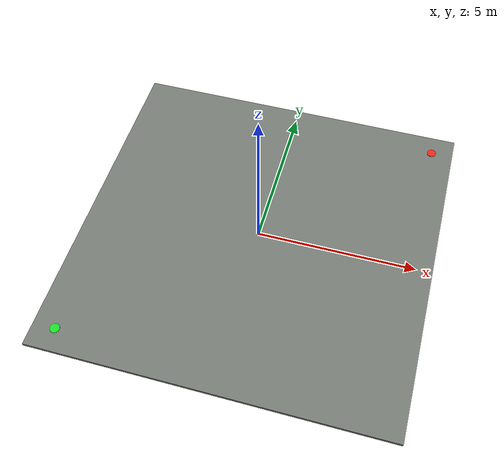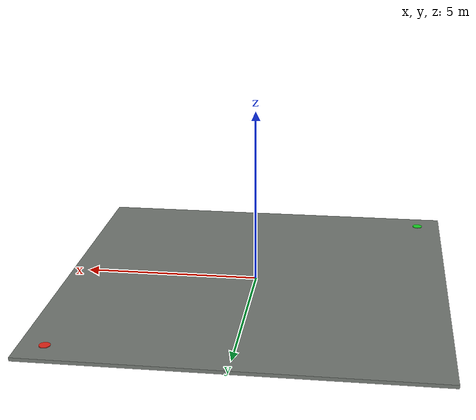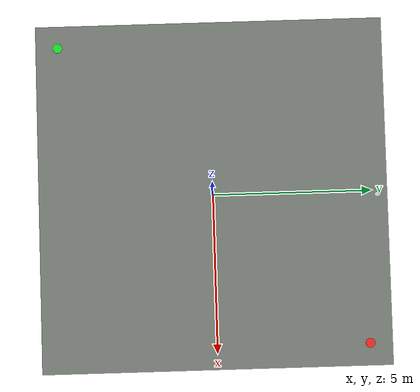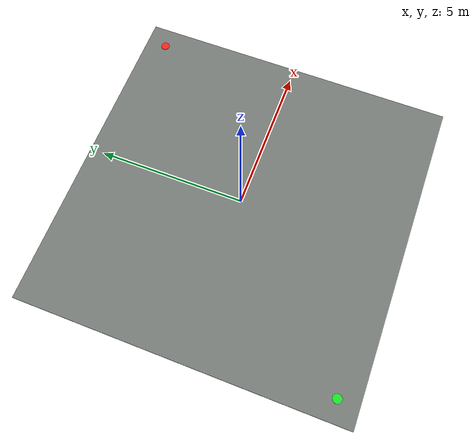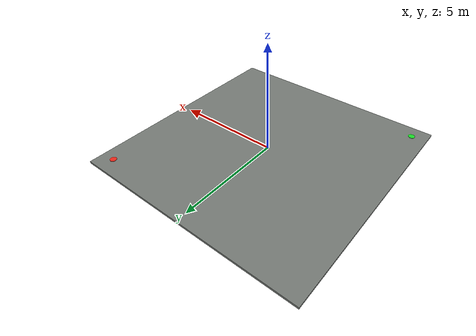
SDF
<sdf version="1.9">
 <world name="maze">
  <model name="ground_plane">
   <static>true</static>
   <link name="link">
    <collision name="collision">
     <geometry><plane><normal>0 0 1</normal><size>100 100</size></plane></geometry>
    </collision>
    <visual name="visual">
     <pose>0 0 -0.05 0 0 0</pose>
     <geometry><box><size>11.000 11.000 0.1</size></box></geometry>
     <material>
      <ambient>0.45 0.47 0.45 1</ambient>
      <diffuse>0.45 0.47 0.45 1</diffuse>
      <specular>0.1 0.1 0.1 1</specular>
     </material>
    </visual>
   </link>
  </model>
  <model name="start_marker">
   <static>true</static>
   <pose>-4.800 -4.800 0 0 0 0</pose>
   <link name="link">
    <visual name="visual">
     <pose>0 0 0.021 0 0 0</pose>
     <geometry><cylinder><radius>0.15</radius><length>0.02</length></cylinder></geometry>
     <material>
      <ambient>0.1 0.85 0.15 1</ambient>
      <diffuse>0.1 0.85 0.15 1</diffuse>
      <specular>0.1 0.1 0.1 1</specular>
     </material>
    </visual>
   </link>
  </model>
  <model name="goal_marker">
   <static>true</static>
   <pose>4.800 4.800 0 0 0 0</pose>
   <link name="link">
    <visual name="visual">
     <pose>0 0 0.021 0 0 0</pose>
     <geometry><cylinder><radius>0.15</radius><length>0.02</length></cylinder></geometry>
     <material>
      <ambient>0.9 0.15 0.1 1</ambient>
      <diffuse>0.9 0.15 0.1 1</diffuse>
      <specular>0.1 0.1 0.1 1</specular>
     </material>
    </visual>
   </link>
  </model>
 </world>
</sdf>
